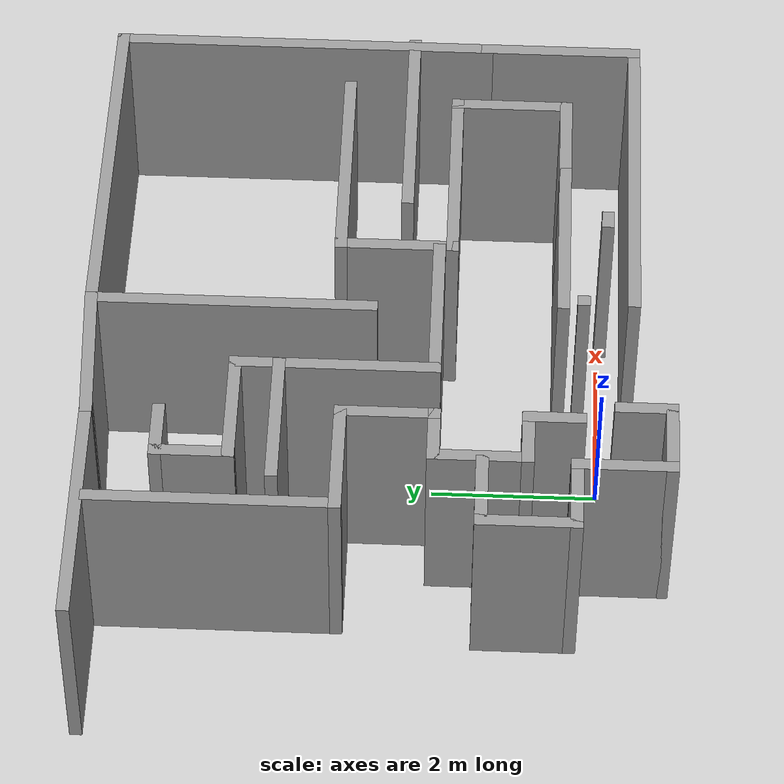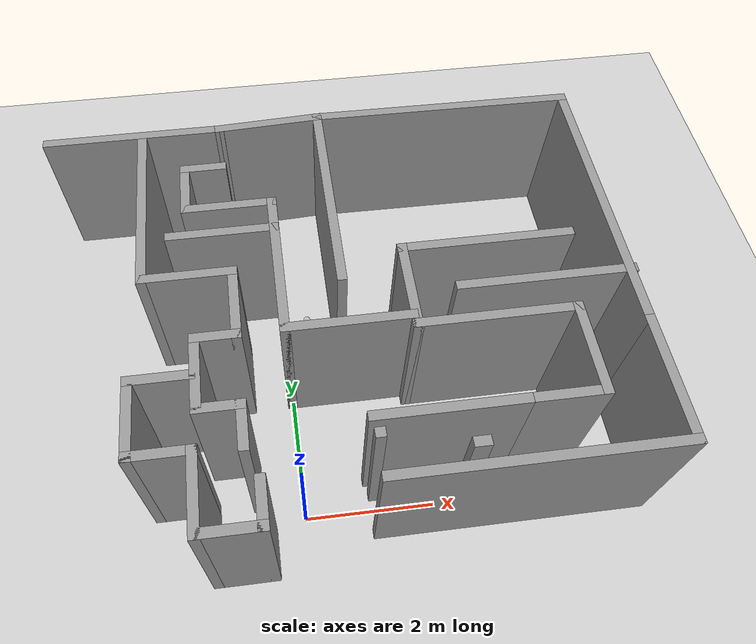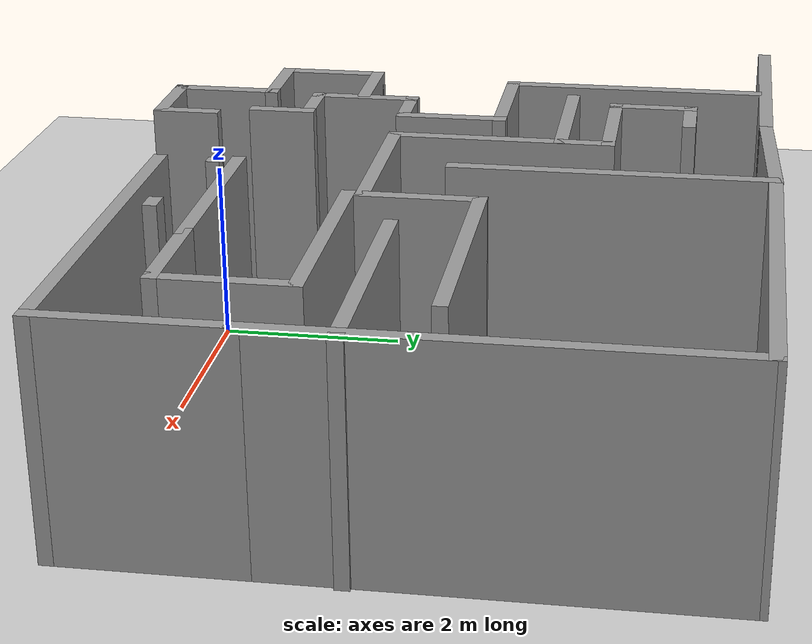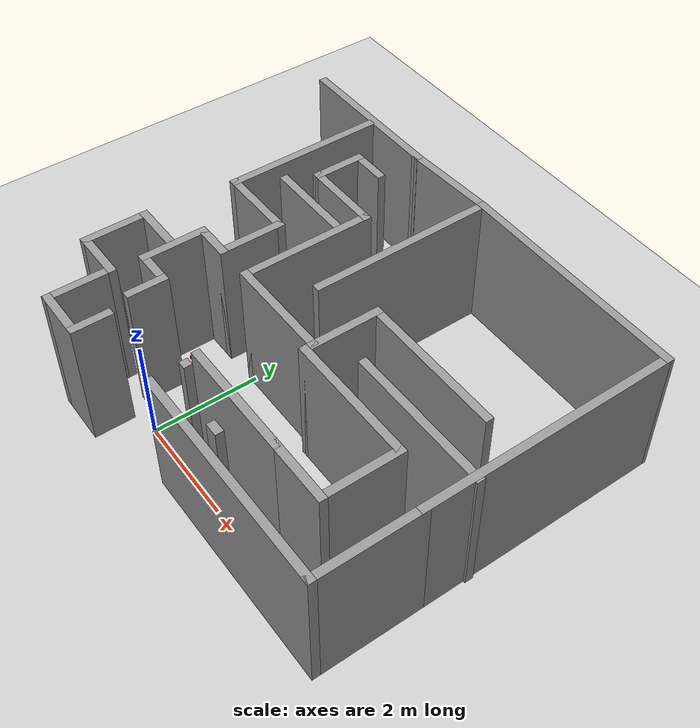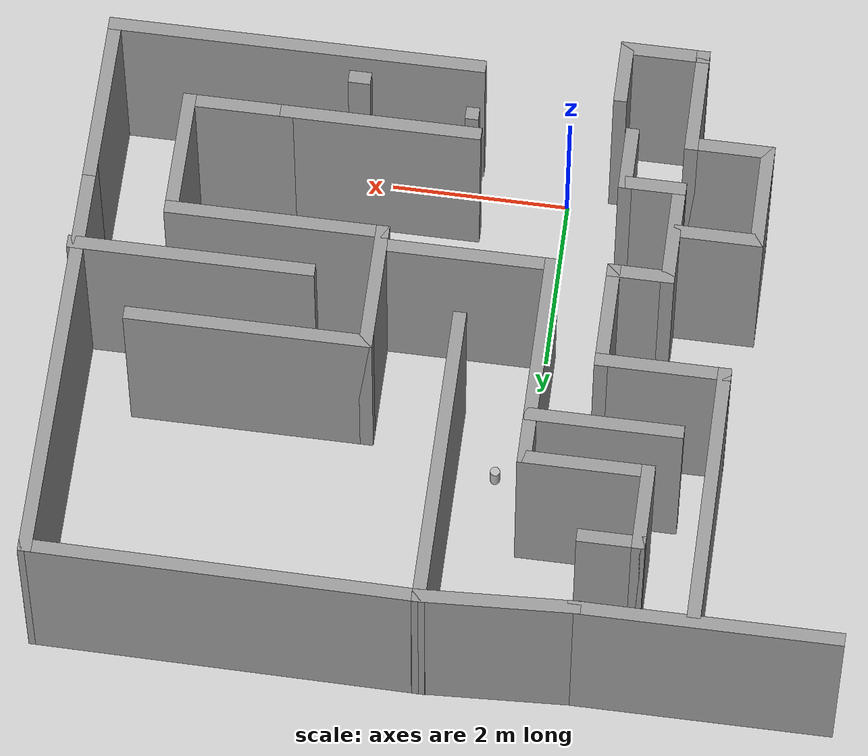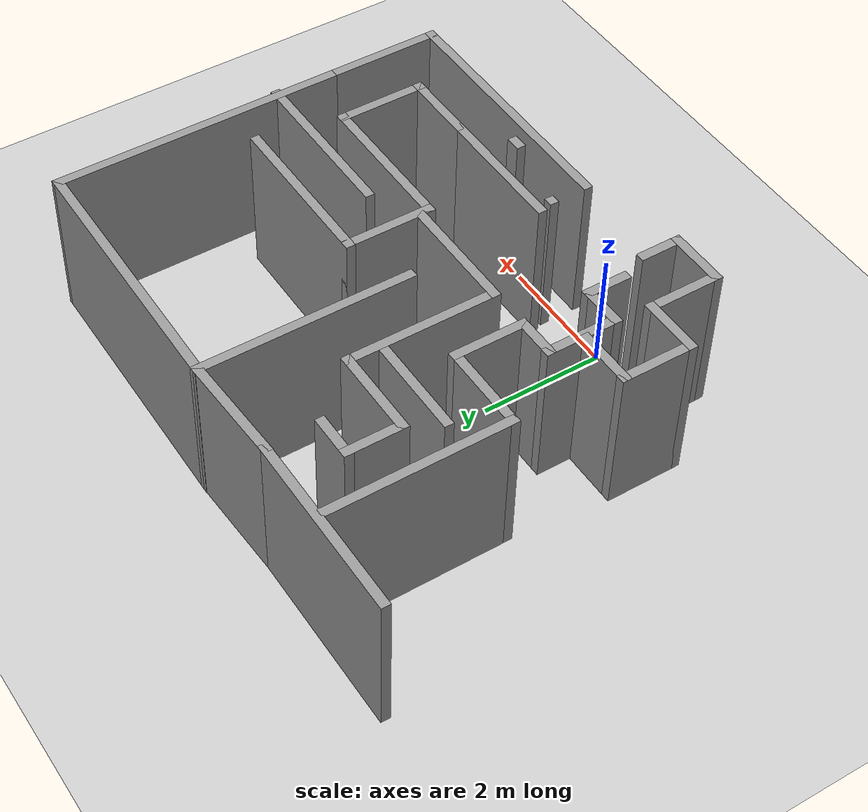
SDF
<sdf version="1.6">
 <world name="default">
  <light name="sun" type="directional">
   <pose>0 0 10 0 -0 0</pose>
   <diffuse>0.8 0.8 0.8 1</diffuse>
   <specular>0.2 0.2 0.2 1</specular>
   <attenuation>
    <range>1000</range>
    <constant>0.9</constant>
    <linear>0.01</linear>
    <quadratic>0.001</quadratic>
   </attenuation>
   <direction>-0.5 0.1 -0.9</direction>
  </light>
  <model name="ground_plane">
   <static>1</static>
   <link name="link">
    <collision name="collision">
     <geometry><plane><normal>0 0 1</normal><size>100 100</size></plane></geometry>
     <surface><friction><ode><mu>100</mu><mu2>50</mu2></ode></friction></surface>
    </collision>
    <visual name="visual">
     <cast_shadows>0</cast_shadows>
     <geometry><plane><normal>0 0 1</normal><size>100 100</size></plane></geometry>
     <material>
      <script><uri>file://media/materials/scripts/gazebo.material</uri><name>Gazebo/Grey</name></script>
     </material>
    </visual>
   </link>
  </model>
  <gravity>0 0 -9.8</gravity>
  <magnetic_field>6e-06 2.3e-05 -4.2e-05</magnetic_field>
  <atmosphere type="adiabatic"/>
  <physics name="default_physics" default="0" type="ode">
   <max_step_size>0.001</max_step_size>
   <real_time_factor>1</real_time_factor>
   <real_time_update_rate>1000</real_time_update_rate>
  </physics>
  <scene><ambient>0.4 0.4 0.4 1</ambient><background>0.7 0.7 0.7 1</background><shadows>1</shadows></scene>
  <spherical_coordinates>
   <surface_model>EARTH_WGS84</surface_model>
   <latitude_deg>0</latitude_deg>
   <longitude_deg>0</longitude_deg>
   <elevation>0</elevation>
   <heading_deg>0</heading_deg>
  </spherical_coordinates>
  <model name="room2">
   <pose>0.795647 2.66834 0 0 -0 0</pose>
   <link name="Wall_10">
    <collision name="Wall_10_Collision">
     <geometry><box><size>1.25 0.15 2.5</size></box></geometry>
     <pose>0 0 1.25 0 -0 0</pose>
    </collision>
    <visual name="Wall_10_Visual">
     <pose>0 0 1.25 0 -0 0</pose>
     <geometry><box><size>1.25 0.15 2.5</size></box></geometry>
     <material>
      <script><uri>file://media/materials/scripts/gazebo.material</uri><name>Gazebo/Grey</name></script>
      <ambient>1 1 1 1</ambient>
     </material>
     <meta><layer>0</layer></meta>
    </visual>
    <pose>-1.50674 -0.141525 0 0 -0 1.5708</pose>
   </link>
   <link name="Wall_11">
    <collision name="Wall_11_Collision">
     <geometry><box><size>1.5 0.15 2.5</size></box></geometry>
     <pose>0 0 1.25 0 -0 0</pose>
    </collision>
    <visual name="Wall_11_Visual">
     <pose>0 0 1.25 0 -0 0</pose>
     <geometry><box><size>1.5 0.15 2.5</size></box></geometry>
     <material>
      <script><uri>file://media/materials/scripts/gazebo.material</uri><name>Gazebo/Grey</name></script>
      <ambient>1 1 1 1</ambient>
     </material>
     <meta><layer>0</layer></meta>
    </visual>
    <pose>-2.18174 0.408475 0 0 -0 3.14159</pose>
   </link>
   <link name="Wall_12">
    <collision name="Wall_12_Collision">
     <geometry><box><size>3 0.15 2.5</size></box></geometry>
     <pose>0 0 1.25 0 -0 0</pose>
    </collision>
    <visual name="Wall_12_Visual">
     <pose>0 0 1.25 0 -0 0</pose>
     <geometry><box><size>3 0.15 2.5</size></box></geometry>
     <material>
      <script><uri>file://media/materials/scripts/gazebo.material</uri><name>Gazebo/Grey</name></script>
      <ambient>1 1 1 1</ambient>
     </material>
     <meta><layer>0</layer></meta>
    </visual>
    <pose>-2.85674 1.83347 0 0 -0 1.5708</pose>
   </link>
   <link name="Wall_14">
    <collision name="Wall_14_Collision">
     <geometry><box><size>3 0.15 2.5</size></box></geometry>
     <pose>0 0 1.25 0 -0 0</pose>
    </collision>
    <visual name="Wall_14_Visual">
     <pose>0 0 1.25 0 -0 0</pose>
     <geometry><box><size>3 0.15 2.5</size></box></geometry>
     <material>
      <script><uri>file://media/materials/scripts/gazebo.material</uri><name>Gazebo/Grey</name></script>
      <ambient>1 1 1 1</ambient>
     </material>
     <meta><layer>0</layer></meta>
    </visual>
    <pose>-2.99398 3.37703 0 0 -0 0</pose>
   </link>
   <link name="Wall_16">
    <collision name="Wall_16_Collision">
     <geometry><box><size>0.75 0.15 2.5</size></box></geometry>
     <pose>0 0 1.25 0 -0 0</pose>
    </collision>
    <visual name="Wall_16_Visual">
     <pose>0 0 1.25 0 -0 0</pose>
     <geometry><box><size>0.75 0.15 2.5</size></box></geometry>
     <material>
      <script><uri>file://media/materials/scripts/gazebo.material</uri><name>Gazebo/Grey</name></script>
      <ambient>1 1 1 1</ambient>
     </material>
     <meta><layer>0</layer></meta>
    </visual>
    <pose>-1.86898 2.52703 0 0 -0 3.14159</pose>
   </link>
   <link name="Wall_17">
    <collision name="Wall_17_Collision">
     <geometry><box><size>1 0.15 2.5</size></box></geometry>
     <pose>0 0 1.25 0 -0 0</pose>
    </collision>
    <visual name="Wall_17_Visual">
     <pose>0 0 1.25 0 -0 0</pose>
     <geometry><box><size>1 0.15 2.5</size></box></geometry>
     <material>
      <script><uri>file://media/materials/scripts/gazebo.material</uri><name>Gazebo/Grey</name></script>
      <ambient>1 1 1 1</ambient>
     </material>
     <meta><layer>0</layer></meta>
    </visual>
    <pose>-2.16898 2.10203 0 0 -0 -1.5708</pose>
   </link>
   <link name="Wall_18">
    <collision name="Wall_18_Collision">
     <geometry><box><size>1.5 0.15 2.5</size></box></geometry>
     <pose>0 0 1.25 0 -0 0</pose>
    </collision>
    <visual name="Wall_18_Visual">
     <pose>0 0 1.25 0 -0 0</pose>
     <geometry><box><size>1.5 0.15 2.5</size></box></geometry>
     <material>
      <script><uri>file://media/materials/scripts/gazebo.material</uri><name>Gazebo/Grey</name></script>
      <ambient>1 1 1 1</ambient>
     </material>
     <meta><layer>0</layer></meta>
    </visual>
    <pose>-1.49398 1.67703 0 0 -0 0</pose>
   </link>
   <link name="Wall_19">
    <collision name="Wall_19_Collision">
     <geometry><box><size>2.5 0.15 2.5</size></box></geometry>
     <pose>0 0 1.25 0 -0 0</pose>
    </collision>
    <visual name="Wall_19_Visual">
     <pose>0 0 1.25 0 -0 0</pose>
     <geometry><box><size>2.5 0.15 2.5</size></box></geometry>
     <material>
      <script><uri>file://media/materials/scripts/gazebo.material</uri><name>Gazebo/Grey</name></script>
      <ambient>1 1 1 1</ambient>
     </material>
     <meta><layer>0</layer></meta>
    </visual>
    <pose>-0.818983 0.502027 0 0 -0 -1.5708</pose>
   </link>
   <link name="Wall_2">
    <collision name="Wall_2_Collision">
     <geometry><box><size>1 0.15 2.5</size></box></geometry>
     <pose>0 0 1.25 0 -0 0</pose>
    </collision>
    <visual name="Wall_2_Visual">
     <pose>0 0 1.25 0 -0 0</pose>
     <geometry><box><size>1 0.15 2.5</size></box></geometry>
     <material>
      <script><uri>file://media/materials/scripts/gazebo.material</uri><name>Gazebo/Grey</name></script>
      <ambient>1 1 1 1</ambient>
     </material>
     <meta><layer>0</layer></meta>
    </visual>
    <pose>-1.75152 -3.46471 0 0 -0 3.14159</pose>
   </link>
   <link name="Wall_22">
    <collision name="Wall_22_Collision">
     <geometry><box><size>4.43213 0.15 2.5</size></box></geometry>
     <pose>0 0 1.25 0 -0 0</pose>
    </collision>
    <visual name="Wall_22_Visual">
     <pose>0 0 1.25 0 -0 0</pose>
     <geometry><box><size>4.43213 0.15 2.5</size></box></geometry>
     <material>
      <script><uri>file://media/materials/scripts/gazebo.material</uri><name>Gazebo/Grey</name></script>
      <ambient>1 1 1 1</ambient>
     </material>
     <meta><layer>0</layer></meta>
    </visual>
    <pose>2.24002 3.44403 0 0 -0 -0.007941</pose>
   </link>
   <link name="Wall_23">
    <collision name="Wall_23_Collision">
     <geometry><box><size>4.75 0.15 2.5</size></box></geometry>
     <pose>0 0 1.25 0 -0 0</pose>
    </collision>
    <visual name="Wall_23_Visual">
     <pose>0 0 1.25 0 -0 0</pose>
     <geometry><box><size>4.75 0.15 2.5</size></box></geometry>
     <material>
      <script><uri>file://media/materials/scripts/gazebo.material</uri><name>Gazebo/Grey</name></script>
      <ambient>1 1 1 1</ambient>
     </material>
     <meta><layer>0</layer></meta>
    </visual>
    <pose>4.38102 1.12703 0 0 -0 -1.5708</pose>
   </link>
   <link name="Wall_29">
    <collision name="Wall_29_Collision">
     <geometry><box><size>1.5 0.15 2.5</size></box></geometry>
     <pose>0 0 1.25 0 -0 0</pose>
    </collision>
    <visual name="Wall_29_Visual">
     <pose>0 0 1.25 0 -0 0</pose>
     <geometry><box><size>1.5 0.15 2.5</size></box></geometry>
     <material>
      <script><uri>file://media/materials/scripts/gazebo.material</uri><name>Gazebo/Grey</name></script>
      <ambient>1 1 1 1</ambient>
     </material>
     <meta><layer>0</layer></meta>
    </visual>
    <pose>1.07379 -0.154278 0 0 -0 -1.5708</pose>
   </link>
   <link name="Wall_3">
    <collision name="Wall_3_Collision">
     <geometry><box><size>1.25 0.15 2.5</size></box></geometry>
     <pose>0 0 1.25 0 -0 0</pose>
    </collision>
    <visual name="Wall_3_Visual">
     <pose>0 0 1.25 0 -0 0</pose>
     <geometry><box><size>1.25 0.15 2.5</size></box></geometry>
     <material>
      <script><uri>file://media/materials/scripts/gazebo.material</uri><name>Gazebo/Grey</name></script>
      <ambient>1 1 1 1</ambient>
     </material>
     <meta><layer>0</layer></meta>
    </visual>
    <pose>-2.17652 -2.91471 0 0 -0 1.5708</pose>
   </link>
   <link name="Wall_30">
    <collision name="Wall_30_Collision">
     <geometry><box><size>2.5 0.15 2.5</size></box></geometry>
     <pose>0 0 1.25 0 -0 0</pose>
    </collision>
    <visual name="Wall_30_Visual">
     <pose>0 0 1.25 0 -0 0</pose>
     <geometry><box><size>2.5 0.15 2.5</size></box></geometry>
     <material>
      <script><uri>file://media/materials/scripts/gazebo.material</uri><name>Gazebo/Grey</name></script>
      <ambient>1 1 1 1</ambient>
     </material>
     <meta><layer>0</layer></meta>
    </visual>
    <pose>2.24879 -0.829278 0 0 -0 0</pose>
   </link>
   <link name="Wall_31">
    <collision name="Wall_31_Collision">
     <geometry><box><size>1.5 0.15 2.5</size></box></geometry>
     <pose>0 0 1.25 0 -0 0</pose>
    </collision>
    <visual name="Wall_31_Visual">
     <pose>0 0 1.25 0 -0 0</pose>
     <geometry><box><size>1.5 0.15 2.5</size></box></geometry>
     <material>
      <script><uri>file://media/materials/scripts/gazebo.material</uri><name>Gazebo/Grey</name></script>
      <ambient>1 1 1 1</ambient>
     </material>
     <meta><layer>0</layer></meta>
    </visual>
    <pose>3.42379 -1.50428 0 0 -0 -1.5708</pose>
   </link>
   <link name="Wall_32">
    <collision name="Wall_32_Collision">
     <geometry><box><size>1.25 0.15 2.5</size></box></geometry>
     <pose>0 0 1.25 0 -0 0</pose>
    </collision>
    <visual name="Wall_32_Visual">
     <pose>0 0 1.25 0 -0 0</pose>
     <geometry><box><size>1.25 0.15 2.5</size></box></geometry>
     <material>
      <script><uri>file://media/materials/scripts/gazebo.material</uri><name>Gazebo/Grey</name></script>
      <ambient>1 1 1 1</ambient>
     </material>
     <meta><layer>0</layer></meta>
    </visual>
    <pose>2.87379 -2.17928 0 0 -0 3.14159</pose>
   </link>
   <link name="Wall_37">
    <collision name="Wall_37_Collision">
     <geometry><box><size>2 0.15 2.5</size></box></geometry>
     <pose>0 0 1.25 0 -0 0</pose>
    </collision>
    <visual name="Wall_37_Visual">
     <pose>0 0 1.25 0 -0 0</pose>
     <geometry><box><size>2 0.15 2.5</size></box></geometry>
     <material>
      <script><uri>file://media/materials/scripts/gazebo.material</uri><name>Gazebo/Grey</name></script>
      <ambient>1 1 1 1</ambient>
     </material>
     <meta><layer>0</layer></meta>
    </visual>
    <pose>4.38102 -2.09797 0 0 -0 -1.5708</pose>
   </link>
   <link name="Wall_38">
    <collision name="Wall_38_Collision">
     <geometry><box><size>4.25 0.15 2.5</size></box></geometry>
     <pose>0 0 1.25 0 -0 0</pose>
    </collision>
    <visual name="Wall_38_Visual">
     <pose>0 0 1.25 0 -0 0</pose>
     <geometry><box><size>4.25 0.15 2.5</size></box></geometry>
     <material>
      <script><uri>file://media/materials/scripts/gazebo.material</uri><name>Gazebo/Grey</name></script>
      <ambient>1 1 1 1</ambient>
     </material>
     <meta><layer>0</layer></meta>
    </visual>
    <pose>2.33102 -3.02297 0 0 -0 3.14159</pose>
   </link>
   <link name="Wall_4">
    <collision name="Wall_4_Collision">
     <geometry><box><size>1 0.15 2.5</size></box></geometry>
     <pose>0 0 1.25 0 -0 0</pose>
    </collision>
    <visual name="Wall_4_Visual">
     <pose>0 0 1.25 0 -0 0</pose>
     <geometry><box><size>1 0.15 2.5</size></box></geometry>
     <material>
      <script><uri>file://media/materials/scripts/gazebo.material</uri><name>Gazebo/Grey</name></script>
      <ambient>1 1 1 1</ambient>
     </material>
     <meta><layer>0</layer></meta>
    </visual>
    <pose>-2.60152 -2.36471 0 0 -0 3.14159</pose>
   </link>
   <link name="Wall_40">
    <collision name="Wall_40_Collision">
     <geometry><box><size>0.15 0.15 2.5</size></box></geometry>
     <pose>0 0 1.25 0 -0 0</pose>
    </collision>
    <visual name="Wall_40_Visual">
     <pose>0 0 1.25 0 -0 0</pose>
     <geometry><box><size>0.15 0.15 2.5</size></box></geometry>
     <material>
      <script><uri>file://media/materials/scripts/gazebo.material</uri><name>Gazebo/Grey</name></script>
      <ambient>1 1 1 1</ambient>
     </material>
     <meta><layer>0</layer></meta>
    </visual>
    <pose>0.281017 -2.42297 0 0 -0 0</pose>
   </link>
   <link name="Wall_41">
    <collision name="Wall_41_Collision">
     <geometry><box><size>0.15 0.15 2.5</size></box></geometry>
     <pose>0 0 1.25 0 -0 0</pose>
    </collision>
    <visual name="Wall_41_Visual">
     <pose>0 0 1.25 0 -0 0</pose>
     <geometry><box><size>0.15 0.15 2.5</size></box></geometry>
     <material>
      <script><uri>file://media/materials/scripts/gazebo.material</uri><name>Gazebo/Grey</name></script>
      <ambient>1 1 1 1</ambient>
     </material>
     <meta><layer>0</layer></meta>
    </visual>
    <pose>0.281017 -2.42297 0 0 -0 0</pose>
   </link>
   <link name="Wall_46">
    <collision name="Wall_46_Collision">
     <geometry><box><size>2.25 0.15 2.5</size></box></geometry>
     <pose>0 0 1.25 0 -0 0</pose>
    </collision>
    <visual name="Wall_46_Visual">
     <pose>0 0 1.25 0 -0 0</pose>
     <geometry><box><size>2.25 0.15 2.5</size></box></geometry>
     <material>
      <script><uri>file://media/materials/scripts/gazebo.material</uri><name>Gazebo/Grey</name></script>
      <ambient>1 1 1 1</ambient>
     </material>
     <meta><layer>0</layer></meta>
    </visual>
    <pose>1.27379 -2.17928 0 0 -0 3.14159</pose>
   </link>
   <link name="Wall_48">
    <collision name="Wall_48_Collision">
     <geometry><box><size>0.25 0.15 2.5</size></box></geometry>
     <pose>0 0 1.25 0 -0 0</pose>
    </collision>
    <visual name="Wall_48_Visual">
     <pose>0 0 1.25 0 -0 0</pose>
     <geometry><box><size>0.25 0.15 2.5</size></box></geometry>
     <material>
      <script><uri>file://media/materials/scripts/gazebo.material</uri><name>Gazebo/Grey</name></script>
      <ambient>1 1 1 1</ambient>
     </material>
     <meta><layer>0</layer></meta>
    </visual>
    <pose>1.57997 -2.70724 0 0 -0 0</pose>
   </link>
   <link name="Wall_5">
    <collision name="Wall_5_Collision">
     <geometry><box><size>1.25 0.15 2.5</size></box></geometry>
     <pose>0 0 1.25 0 -0 0</pose>
    </collision>
    <visual name="Wall_5_Visual">
     <pose>0 0 1.25 0 -0 0</pose>
     <geometry><box><size>1.25 0.15 2.5</size></box></geometry>
     <material>
      <script><uri>file://media/materials/scripts/gazebo.material</uri><name>Gazebo/Grey</name></script>
      <ambient>1 1 1 1</ambient>
     </material>
     <meta><layer>0</layer></meta>
    </visual>
    <pose>-3.02652 -1.81471 0 0 -0 1.5708</pose>
   </link>
   <link name="Wall_50">
    <collision name="Wall_50_Collision">
     <geometry><box><size>2.75 0.15 2.5</size></box></geometry>
     <pose>0 0 1.25 0 -0 0</pose>
    </collision>
    <visual name="Wall_50_Visual">
     <pose>0 0 1.25 0 -0 0</pose>
     <geometry><box><size>2.75 0.15 2.5</size></box></geometry>
     <material>
      <script><uri>file://media/materials/scripts/gazebo.material</uri><name>Gazebo/Grey</name></script>
      <ambient>1 1 1 1</ambient>
     </material>
     <meta><layer>0</layer></meta>
    </visual>
    <pose>3.11898 -0.261754 0 0 -0 0</pose>
   </link>
   <link name="Wall_52">
    <collision name="Wall_52_Collision">
     <geometry><box><size>1.75 0.15 2.5</size></box></geometry>
     <pose>0 0 1.25 0 -0 0</pose>
    </collision>
    <visual name="Wall_52_Visual">
     <pose>0 0 1.25 0 -0 0</pose>
     <geometry><box><size>1.75 0.15 2.5</size></box></geometry>
     <material>
      <script><uri>file://media/materials/scripts/gazebo.material</uri><name>Gazebo/Grey</name></script>
      <ambient>1 1 1 1</ambient>
     </material>
     <meta><layer>0</layer></meta>
    </visual>
    <pose>-1.62727 1.16108 0 0 -0 0</pose>
   </link>
   <link name="Wall_55">
    <collision name="Wall_55_Collision">
     <geometry><box><size>3.5 0.15 2.5</size></box></geometry>
     <pose>0 0 1.25 0 -0 0</pose>
    </collision>
    <visual name="Wall_55_Visual">
     <pose>0 0 1.25 0 -0 0</pose>
     <geometry><box><size>3.5 0.15 2.5</size></box></geometry>
     <material>
      <script><uri>file://media/materials/scripts/gazebo.material</uri><name>Gazebo/Grey</name></script>
      <ambient>1 1 1 1</ambient>
     </material>
     <meta><layer>0</layer></meta>
    </visual>
    <pose>0.099024 1.78603 0 0 -0 -1.5708</pose>
   </link>
   <link name="Wall_6">
    <collision name="Wall_6_Collision">
     <geometry><box><size>1 0.15 2.5</size></box></geometry>
     <pose>0 0 1.25 0 -0 0</pose>
    </collision>
    <visual name="Wall_6_Visual">
     <pose>0 0 1.25 0 -0 0</pose>
     <geometry><box><size>1 0.15 2.5</size></box></geometry>
     <material>
      <script><uri>file://media/materials/scripts/gazebo.material</uri><name>Gazebo/Grey</name></script>
      <ambient>1 1 1 1</ambient>
     </material>
     <meta><layer>0</layer></meta>
    </visual>
    <pose>-2.60152 -1.26471 0 0 -0 0</pose>
   </link>
   <link name="Wall_61">
    <collision name="Wall_61_Collision">
     <geometry><box><size>2 0.15 2.5</size></box></geometry>
     <pose>0 0 1.25 0 -0 0</pose>
    </collision>
    <visual name="Wall_61_Visual">
     <pose>0 0 1.25 0 -0 0</pose>
     <geometry><box><size>2 0.15 2.5</size></box></geometry>
     <material>
      <script><uri>file://media/materials/scripts/gazebo.material</uri><name>Gazebo/Grey</name></script>
      <ambient>1 1 1 1</ambient>
     </material>
     <meta><layer>0</layer></meta>
    </visual>
    <pose>0.106017 -0.672973 0 0 -0 0</pose>
   </link>
   <link name="Wall_63">
    <collision name="Wall_63_Collision">
     <geometry><box><size>1.82012 0.15 2.5</size></box></geometry>
     <pose>0 0 1.25 0 -0 0</pose>
    </collision>
    <visual name="Wall_63_Visual">
     <pose>0 0 1.25 0 -0 0</pose>
     <geometry><box><size>1.82012 0.15 2.5</size></box></geometry>
     <material>
      <script><uri>file://media/materials/scripts/gazebo.material</uri><name>Gazebo/Grey</name></script>
      <ambient>1 1 1 1</ambient>
     </material>
     <meta><layer>0</layer></meta>
    </visual>
    <pose>-0.734979 3.41903 0 0 -0 0.050319</pose>
   </link>
   <link name="Wall_66">
    <collision name="Wall_66_Collision">
     <geometry><box><size>2.75 0.15 2.5</size></box></geometry>
     <pose>0 0 1.25 0 -0 0</pose>
    </collision>
    <visual name="Wall_66_Visual">
     <pose>0 0 1.25 0 -0 0</pose>
     <geometry><box><size>2.75 0.15 2.5</size></box></geometry>
     <material>
      <script><uri>file://media/materials/scripts/gazebo.material</uri><name>Gazebo/Grey</name></script>
      <ambient>1 1 1 1</ambient>
     </material>
     <meta><layer>0</layer></meta>
    </visual>
    <pose>2.37379 0.520722 0 0 -0 0</pose>
   </link>
   <link name="Wall_68">
    <collision name="Wall_68_Collision">
     <geometry><box><size>0.75 0.15 2.5</size></box></geometry>
     <pose>0 0 1.25 0 -0 0</pose>
    </collision>
    <visual name="Wall_68_Visual">
     <pose>0 0 1.25 0 -0 0</pose>
     <geometry><box><size>0.75 0.15 2.5</size></box></geometry>
     <material>
      <script><uri>file://media/materials/scripts/gazebo.material</uri><name>Gazebo/Grey</name></script>
      <ambient>1 1 1 1</ambient>
     </material>
     <meta><layer>0</layer></meta>
    </visual>
    <pose>-1.32652 -3.16471 0 0 -0 1.5708</pose>
   </link>
   <link name="Wall_70">
    <collision name="Wall_70_Collision">
     <geometry><box><size>0.75 0.15 2.5</size></box></geometry>
     <pose>0 0 1.25 0 -0 0</pose>
    </collision>
    <visual name="Wall_70_Visual">
     <pose>0 0 1.25 0 -0 0</pose>
     <geometry><box><size>0.75 0.15 2.5</size></box></geometry>
     <material>
      <script><uri>file://media/materials/scripts/gazebo.material</uri><name>Gazebo/Grey</name></script>
      <ambient>1 1 1 1</ambient>
     </material>
     <meta><layer>0</layer></meta>
    </visual>
    <pose>-1.80674 -1.79153 0 0 -0 0</pose>
   </link>
   <link name="Wall_71">
    <collision name="Wall_71_Collision">
     <geometry><box><size>0.75 0.15 2.5</size></box></geometry>
     <pose>0 0 1.25 0 -0 0</pose>
    </collision>
    <visual name="Wall_71_Visual">
     <pose>0 0 1.25 0 -0 0</pose>
     <geometry><box><size>0.75 0.15 2.5</size></box></geometry>
     <material>
      <script><uri>file://media/materials/scripts/gazebo.material</uri><name>Gazebo/Grey</name></script>
      <ambient>1 1 1 1</ambient>
     </material>
     <meta><layer>0</layer></meta>
    </visual>
    <pose>-1.50674 -2.09152 0 0 -0 -1.5708</pose>
   </link>
   <link name="Wall_8">
    <collision name="Wall_8_Collision">
     <geometry><box><size>1.25 0.15 2.5</size></box></geometry>
     <pose>0 0 1.25 0 -0 0</pose>
    </collision>
    <visual name="Wall_8_Visual">
     <pose>0 0 1.25 0 -0 0</pose>
     <geometry><box><size>1.25 0.15 2.5</size></box></geometry>
     <material>
      <script><uri>file://media/materials/scripts/gazebo.material</uri><name>Gazebo/Grey</name></script>
      <ambient>1 1 1 1</ambient>
     </material>
     <meta><layer>0</layer></meta>
    </visual>
    <pose>-2.10674 -1.24152 0 0 -0 1.5708</pose>
   </link>
   <link name="Wall_9">
    <collision name="Wall_9_Collision">
     <geometry><box><size>0.75 0.15 2.5</size></box></geometry>
     <pose>0 0 1.25 0 -0 0</pose>
    </collision>
    <visual name="Wall_9_Visual">
     <pose>0 0 1.25 0 -0 0</pose>
     <geometry><box><size>0.75 0.15 2.5</size></box></geometry>
     <material>
      <script><uri>file://media/materials/scripts/gazebo.material</uri><name>Gazebo/Grey</name></script>
      <ambient>1 1 1 1</ambient>
     </material>
     <meta><layer>0</layer></meta>
    </visual>
    <pose>-1.80674 -0.691525 0 0 -0 0</pose>
   </link>
   <static>1</static>
  </model>
  <model name="beer">
   <link name="link">
    <pose>0 0 0.115 0 -0 0</pose>
    <inertial>
     <mass>0.39</mass>
     <inertia><ixx>0.00058</ixx><ixy>0</ixy><ixz>0</ixz><iyy>0.00058</iyy><iyz>0</iyz><izz>0.00019</izz></inertia>
    </inertial>
    <collision name="collision">
     <geometry><cylinder><radius>0.055</radius><length>0.23</length></cylinder></geometry>
    </collision>
    <visual name="visual">
     <geometry><cylinder><radius>0.055</radius><length>0.23</length></cylinder></geometry>
     <material>
      <script>
       <uri>model://beer/materials/scripts</uri>
       <uri>model://beer/materials/textures</uri>
       <name>Beer/Diffuse</name>
      </script>
     </material>
    </visual>
   </link>
   <pose>0.384235 3.50906 -2e-06 1e-06 0 -7e-06</pose>
  </model>
  <model name="cricket_ball">
   <link name="link">
    <pose>0 0 0.0375 0 -0 0</pose>
    <inertial>
     <mass>0.1467</mass>
     <inertia>
      <ixx>8.25187e-05</ixx>
      <ixy>0</ixy>
      <ixz>0</ixz>
      <iyy>8.25187e-05</iyy>
      <iyz>0</iyz>
      <izz>8.25187e-05</izz>
     </inertia>
    </inertial>
    <collision name="collision">
     <geometry><sphere><radius>0.0375</radius></sphere></geometry>
     <surface>
      <contact>
       <poissons_ratio>0.347</poissons_ratio>
       <elastic_modulus>8.8e+09</elastic_modulus>
       <ode><kp>100000</kp><kd>100</kd><max_vel>100</max_vel><min_depth>0.001</min_depth></ode>
      </contact>
      <friction>
       <torsional>
        <coefficient>1</coefficient>
        <use_patch_radius>0</use_patch_radius>
        <surface_radius>0.01</surface_radius>
       </torsional>
      </friction>
     </surface>
    </collision>
    <visual name="visual">
     <geometry><sphere><radius>0.0375</radius></sphere></geometry>
     <material>
      <script><uri>file://media/materials/scripts/gazebo.material</uri><name>Gazebo/Red</name></script>
     </material>
    </visual>
    <velocity_decay><linear>0</linear><angular>0.005</angular></velocity_decay>
   </link>
   <pose>-1.0527 1.33932 -0.001014 0 -0 0</pose>
  </model>
 </world>
</sdf>
